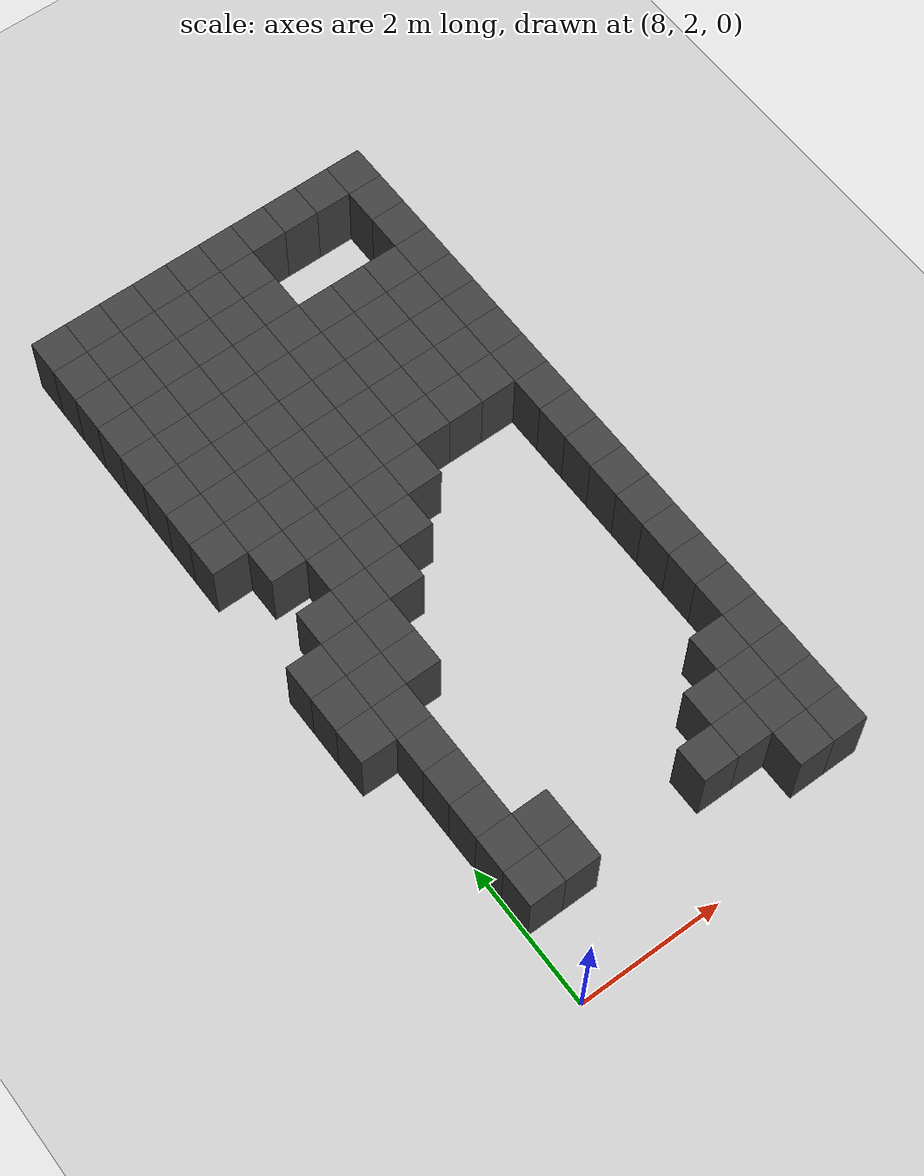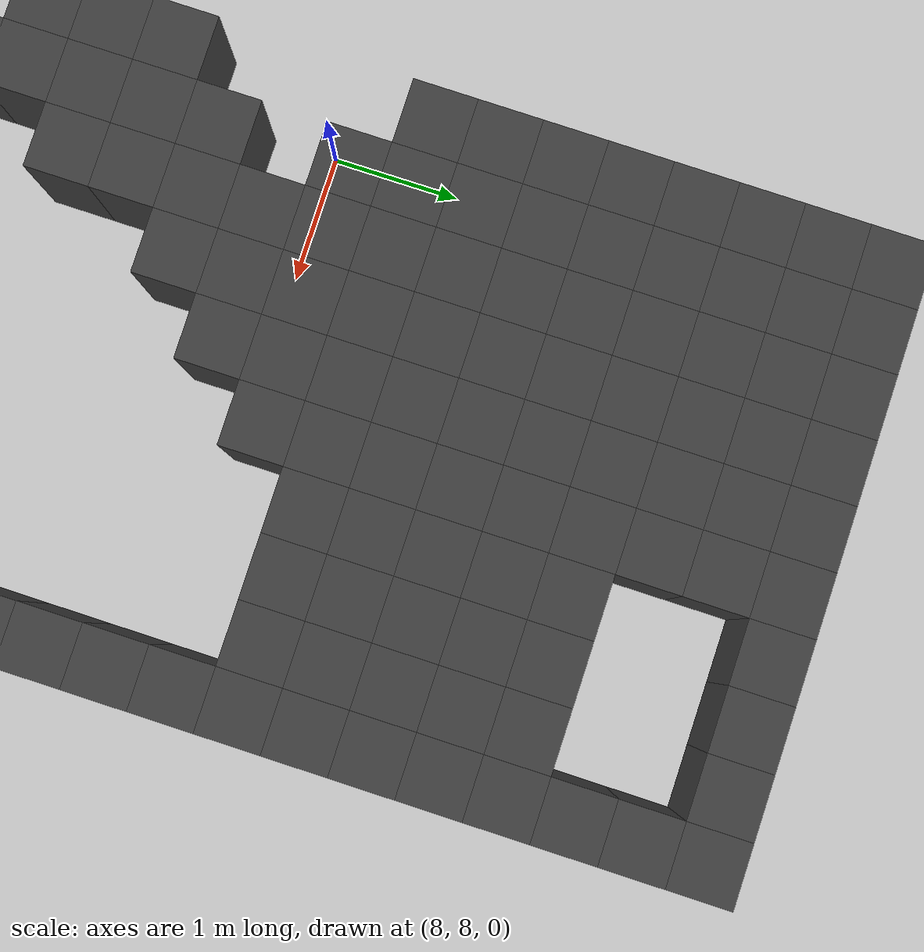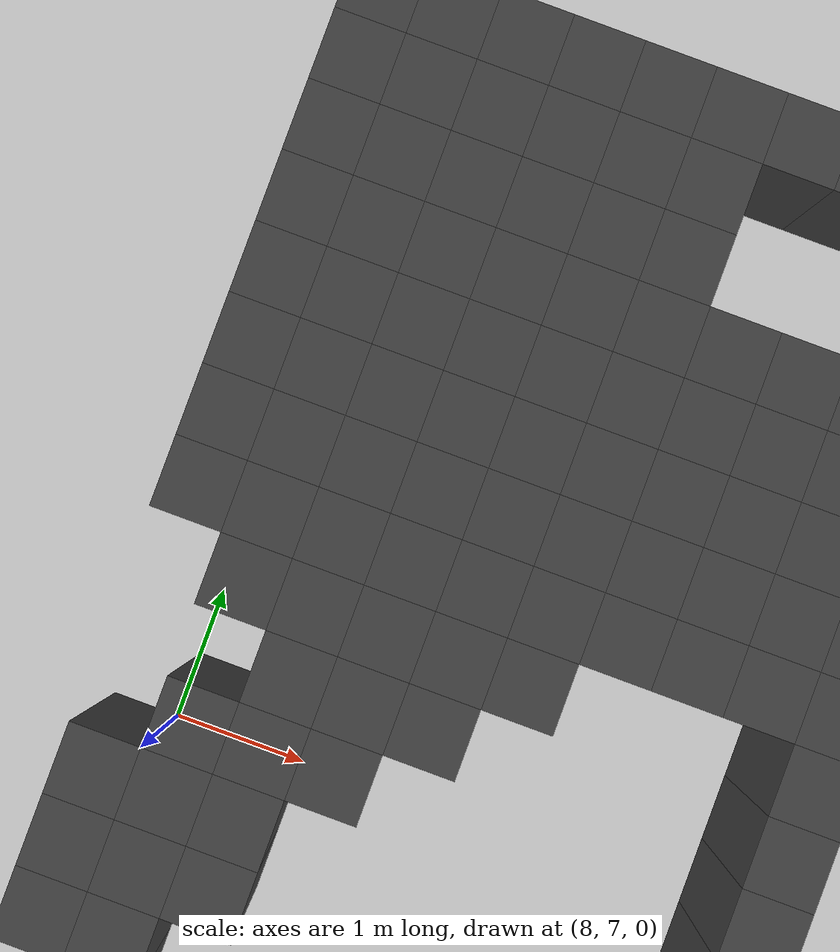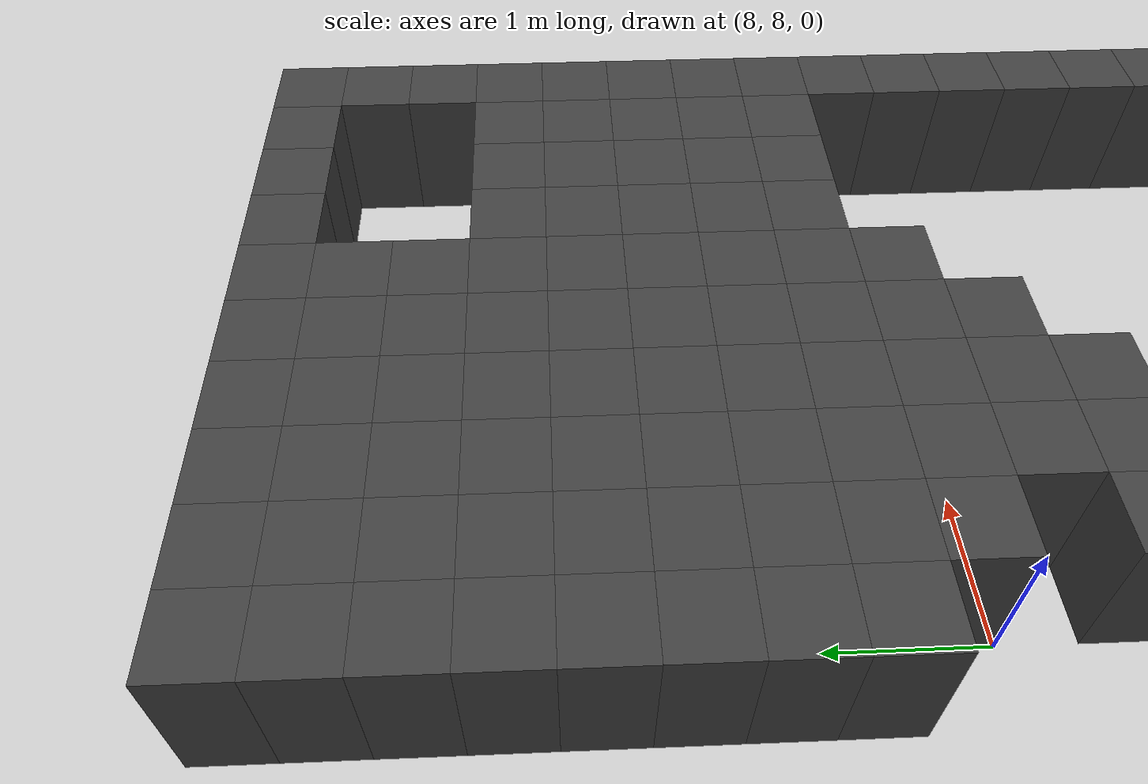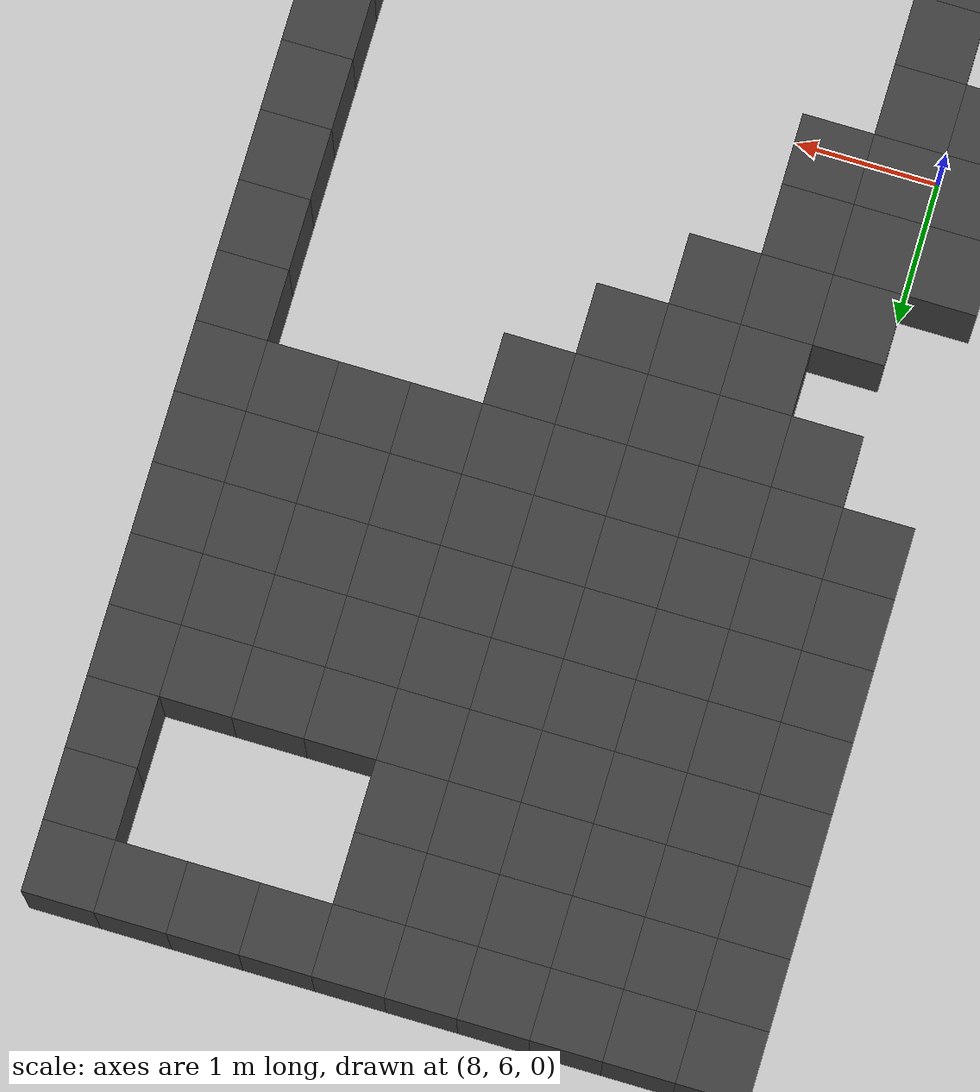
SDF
<sdf version="1.7">
 <world name="map_9826">
  <model name="ground_plane">
   <static>true</static>
   <link name="link">
    <collision name="collision">
     <geometry><plane><normal>0 0 1</normal><size>200 200</size></plane></geometry>
    </collision>
    <visual name="visual">
     <geometry><plane><normal>0 0 1</normal><size>200 200</size></plane></geometry>
     <material><ambient>0.8 0.8 0.8 1</ambient><diffuse>0.8 0.8 0.8 1</diffuse></material>
    </visual>
   </link>
  </model>
  <model name="maze_environment">
   <static>true</static>
   <link name="wall_40">
    <pose>7.750 12.250 0.500 0 0 0</pose>
    <collision name="col"><geometry><box><size>0.5 0.5 1.0</size></box></geometry></collision>
    <visual name="vis">
     <geometry><box><size>0.5 0.5 1.0</size></box></geometry>
     <material><ambient>0.15 0.15 0.15 1</ambient><diffuse>0.25 0.25 0.25 1</diffuse></material>
    </visual>
   </link>
   <link name="wall_41">
    <pose>8.250 12.250 0.500 0 0 0</pose>
    <collision name="col"><geometry><box><size>0.5 0.5 1.0</size></box></geometry></collision>
    <visual name="vis">
     <geometry><box><size>0.5 0.5 1.0</size></box></geometry>
     <material><ambient>0.15 0.15 0.15 1</ambient><diffuse>0.25 0.25 0.25 1</diffuse></material>
    </visual>
   </link>
   <link name="wall_42">
    <pose>8.750 12.250 0.500 0 0 0</pose>
    <collision name="col"><geometry><box><size>0.5 0.5 1.0</size></box></geometry></collision>
    <visual name="vis">
     <geometry><box><size>0.5 0.5 1.0</size></box></geometry>
     <material><ambient>0.15 0.15 0.15 1</ambient><diffuse>0.25 0.25 0.25 1</diffuse></material>
    </visual>
   </link>
   <link name="wall_43">
    <pose>9.250 12.250 0.500 0 0 0</pose>
    <collision name="col"><geometry><box><size>0.5 0.5 1.0</size></box></geometry></collision>
    <visual name="vis">
     <geometry><box><size>0.5 0.5 1.0</size></box></geometry>
     <material><ambient>0.15 0.15 0.15 1</ambient><diffuse>0.25 0.25 0.25 1</diffuse></material>
    </visual>
   </link>
   <link name="wall_44">
    <pose>9.750 12.250 0.500 0 0 0</pose>
    <collision name="col"><geometry><box><size>0.5 0.5 1.0</size></box></geometry></collision>
    <visual name="vis">
     <geometry><box><size>0.5 0.5 1.0</size></box></geometry>
     <material><ambient>0.15 0.15 0.15 1</ambient><diffuse>0.25 0.25 0.25 1</diffuse></material>
    </visual>
   </link>
   <link name="wall_45">
    <pose>10.250 12.250 0.500 0 0 0</pose>
    <collision name="col"><geometry><box><size>0.5 0.5 1.0</size></box></geometry></collision>
    <visual name="vis">
     <geometry><box><size>0.5 0.5 1.0</size></box></geometry>
     <material><ambient>0.15 0.15 0.15 1</ambient><diffuse>0.25 0.25 0.25 1</diffuse></material>
    </visual>
   </link>
   <link name="wall_46">
    <pose>10.750 12.250 0.500 0 0 0</pose>
    <collision name="col"><geometry><box><size>0.5 0.5 1.0</size></box></geometry></collision>
    <visual name="vis">
     <geometry><box><size>0.5 0.5 1.0</size></box></geometry>
     <material><ambient>0.15 0.15 0.15 1</ambient><diffuse>0.25 0.25 0.25 1</diffuse></material>
    </visual>
   </link>
   <link name="wall_47">
    <pose>11.250 12.250 0.500 0 0 0</pose>
    <collision name="col"><geometry><box><size>0.5 0.5 1.0</size></box></geometry></collision>
    <visual name="vis">
     <geometry><box><size>0.5 0.5 1.0</size></box></geometry>
     <material><ambient>0.15 0.15 0.15 1</ambient><diffuse>0.25 0.25 0.25 1</diffuse></material>
    </visual>
   </link>
   <link name="wall_48">
    <pose>11.750 12.250 0.500 0 0 0</pose>
    <collision name="col"><geometry><box><size>0.5 0.5 1.0</size></box></geometry></collision>
    <visual name="vis">
     <geometry><box><size>0.5 0.5 1.0</size></box></geometry>
     <material><ambient>0.15 0.15 0.15 1</ambient><diffuse>0.25 0.25 0.25 1</diffuse></material>
    </visual>
   </link>
   <link name="wall_49">
    <pose>12.250 12.250 0.500 0 0 0</pose>
    <collision name="col"><geometry><box><size>0.5 0.5 1.0</size></box></geometry></collision>
    <visual name="vis">
     <geometry><box><size>0.5 0.5 1.0</size></box></geometry>
     <material><ambient>0.15 0.15 0.15 1</ambient><diffuse>0.25 0.25 0.25 1</diffuse></material>
    </visual>
   </link>
   <link name="wall_84">
    <pose>7.750 11.750 0.500 0 0 0</pose>
    <collision name="col"><geometry><box><size>0.5 0.5 1.0</size></box></geometry></collision>
    <visual name="vis">
     <geometry><box><size>0.5 0.5 1.0</size></box></geometry>
     <material><ambient>0.15 0.15 0.15 1</ambient><diffuse>0.25 0.25 0.25 1</diffuse></material>
    </visual>
   </link>
   <link name="wall_85">
    <pose>8.250 11.750 0.500 0 0 0</pose>
    <collision name="col"><geometry><box><size>0.5 0.5 1.0</size></box></geometry></collision>
    <visual name="vis">
     <geometry><box><size>0.5 0.5 1.0</size></box></geometry>
     <material><ambient>0.15 0.15 0.15 1</ambient><diffuse>0.25 0.25 0.25 1</diffuse></material>
    </visual>
   </link>
   <link name="wall_86">
    <pose>8.750 11.750 0.500 0 0 0</pose>
    <collision name="col"><geometry><box><size>0.5 0.5 1.0</size></box></geometry></collision>
    <visual name="vis">
     <geometry><box><size>0.5 0.5 1.0</size></box></geometry>
     <material><ambient>0.15 0.15 0.15 1</ambient><diffuse>0.25 0.25 0.25 1</diffuse></material>
    </visual>
   </link>
   <link name="wall_87">
    <pose>9.250 11.750 0.500 0 0 0</pose>
    <collision name="col"><geometry><box><size>0.5 0.5 1.0</size></box></geometry></collision>
    <visual name="vis">
     <geometry><box><size>0.5 0.5 1.0</size></box></geometry>
     <material><ambient>0.15 0.15 0.15 1</ambient><diffuse>0.25 0.25 0.25 1</diffuse></material>
    </visual>
   </link>
   <link name="wall_88">
    <pose>9.750 11.750 0.500 0 0 0</pose>
    <collision name="col"><geometry><box><size>0.5 0.5 1.0</size></box></geometry></collision>
    <visual name="vis">
     <geometry><box><size>0.5 0.5 1.0</size></box></geometry>
     <material><ambient>0.15 0.15 0.15 1</ambient><diffuse>0.25 0.25 0.25 1</diffuse></material>
    </visual>
   </link>
   <link name="wall_89">
    <pose>10.250 11.750 0.500 0 0 0</pose>
    <collision name="col"><geometry><box><size>0.5 0.5 1.0</size></box></geometry></collision>
    <visual name="vis">
     <geometry><box><size>0.5 0.5 1.0</size></box></geometry>
     <material><ambient>0.15 0.15 0.15 1</ambient><diffuse>0.25 0.25 0.25 1</diffuse></material>
    </visual>
   </link>
   <link name="wall_90">
    <pose>12.250 11.750 0.500 0 0 0</pose>
    <collision name="col"><geometry><box><size>0.5 0.5 1.0</size></box></geometry></collision>
    <visual name="vis">
     <geometry><box><size>0.5 0.5 1.0</size></box></geometry>
     <material><ambient>0.15 0.15 0.15 1</ambient><diffuse>0.25 0.25 0.25 1</diffuse></material>
    </visual>
   </link>
   <link name="wall_114">
    <pose>7.750 11.250 0.500 0 0 0</pose>
    <collision name="col"><geometry><box><size>0.5 0.5 1.0</size></box></geometry></collision>
    <visual name="vis">
     <geometry><box><size>0.5 0.5 1.0</size></box></geometry>
     <material><ambient>0.15 0.15 0.15 1</ambient><diffuse>0.25 0.25 0.25 1</diffuse></material>
    </visual>
   </link>
   <link name="wall_115">
    <pose>8.250 11.250 0.500 0 0 0</pose>
    <collision name="col"><geometry><box><size>0.5 0.5 1.0</size></box></geometry></collision>
    <visual name="vis">
     <geometry><box><size>0.5 0.5 1.0</size></box></geometry>
     <material><ambient>0.15 0.15 0.15 1</ambient><diffuse>0.25 0.25 0.25 1</diffuse></material>
    </visual>
   </link>
   <link name="wall_116">
    <pose>8.750 11.250 0.500 0 0 0</pose>
    <collision name="col"><geometry><box><size>0.5 0.5 1.0</size></box></geometry></collision>
    <visual name="vis">
     <geometry><box><size>0.5 0.5 1.0</size></box></geometry>
     <material><ambient>0.15 0.15 0.15 1</ambient><diffuse>0.25 0.25 0.25 1</diffuse></material>
    </visual>
   </link>
   <link name="wall_117">
    <pose>9.250 11.250 0.500 0 0 0</pose>
    <collision name="col"><geometry><box><size>0.5 0.5 1.0</size></box></geometry></collision>
    <visual name="vis">
     <geometry><box><size>0.5 0.5 1.0</size></box></geometry>
     <material><ambient>0.15 0.15 0.15 1</ambient><diffuse>0.25 0.25 0.25 1</diffuse></material>
    </visual>
   </link>
   <link name="wall_118">
    <pose>9.750 11.250 0.500 0 0 0</pose>
    <collision name="col"><geometry><box><size>0.5 0.5 1.0</size></box></geometry></collision>
    <visual name="vis">
     <geometry><box><size>0.5 0.5 1.0</size></box></geometry>
     <material><ambient>0.15 0.15 0.15 1</ambient><diffuse>0.25 0.25 0.25 1</diffuse></material>
    </visual>
   </link>
   <link name="wall_119">
    <pose>10.250 11.250 0.500 0 0 0</pose>
    <collision name="col"><geometry><box><size>0.5 0.5 1.0</size></box></geometry></collision>
    <visual name="vis">
     <geometry><box><size>0.5 0.5 1.0</size></box></geometry>
     <material><ambient>0.15 0.15 0.15 1</ambient><diffuse>0.25 0.25 0.25 1</diffuse></material>
    </visual>
   </link>
   <link name="wall_120">
    <pose>12.250 11.250 0.500 0 0 0</pose>
    <collision name="col"><geometry><box><size>0.5 0.5 1.0</size></box></geometry></collision>
    <visual name="vis">
     <geometry><box><size>0.5 0.5 1.0</size></box></geometry>
     <material><ambient>0.15 0.15 0.15 1</ambient><diffuse>0.25 0.25 0.25 1</diffuse></material>
    </visual>
   </link>
   <link name="wall_136">
    <pose>7.750 10.750 0.500 0 0 0</pose>
    <collision name="col"><geometry><box><size>0.5 0.5 1.0</size></box></geometry></collision>
    <visual name="vis">
     <geometry><box><size>0.5 0.5 1.0</size></box></geometry>
     <material><ambient>0.15 0.15 0.15 1</ambient><diffuse>0.25 0.25 0.25 1</diffuse></material>
    </visual>
   </link>
   <link name="wall_137">
    <pose>8.250 10.750 0.500 0 0 0</pose>
    <collision name="col"><geometry><box><size>0.5 0.5 1.0</size></box></geometry></collision>
    <visual name="vis">
     <geometry><box><size>0.5 0.5 1.0</size></box></geometry>
     <material><ambient>0.15 0.15 0.15 1</ambient><diffuse>0.25 0.25 0.25 1</diffuse></material>
    </visual>
   </link>
   <link name="wall_138">
    <pose>8.750 10.750 0.500 0 0 0</pose>
    <collision name="col"><geometry><box><size>0.5 0.5 1.0</size></box></geometry></collision>
    <visual name="vis">
     <geometry><box><size>0.5 0.5 1.0</size></box></geometry>
     <material><ambient>0.15 0.15 0.15 1</ambient><diffuse>0.25 0.25 0.25 1</diffuse></material>
    </visual>
   </link>
   <link name="wall_139">
    <pose>9.250 10.750 0.500 0 0 0</pose>
    <collision name="col"><geometry><box><size>0.5 0.5 1.0</size></box></geometry></collision>
    <visual name="vis">
     <geometry><box><size>0.5 0.5 1.0</size></box></geometry>
     <material><ambient>0.15 0.15 0.15 1</ambient><diffuse>0.25 0.25 0.25 1</diffuse></material>
    </visual>
   </link>
   <link name="wall_140">
    <pose>9.750 10.750 0.500 0 0 0</pose>
    <collision name="col"><geometry><box><size>0.5 0.5 1.0</size></box></geometry></collision>
    <visual name="vis">
     <geometry><box><size>0.5 0.5 1.0</size></box></geometry>
     <material><ambient>0.15 0.15 0.15 1</ambient><diffuse>0.25 0.25 0.25 1</diffuse></material>
    </visual>
   </link>
   <link name="wall_141">
    <pose>10.250 10.750 0.500 0 0 0</pose>
    <collision name="col"><geometry><box><size>0.5 0.5 1.0</size></box></geometry></collision>
    <visual name="vis">
     <geometry><box><size>0.5 0.5 1.0</size></box></geometry>
     <material><ambient>0.15 0.15 0.15 1</ambient><diffuse>0.25 0.25 0.25 1</diffuse></material>
    </visual>
   </link>
   <link name="wall_142">
    <pose>10.750 10.750 0.500 0 0 0</pose>
    <collision name="col"><geometry><box><size>0.5 0.5 1.0</size></box></geometry></collision>
    <visual name="vis">
     <geometry><box><size>0.5 0.5 1.0</size></box></geometry>
     <material><ambient>0.15 0.15 0.15 1</ambient><diffuse>0.25 0.25 0.25 1</diffuse></material>
    </visual>
   </link>
   <link name="wall_143">
    <pose>11.250 10.750 0.500 0 0 0</pose>
    <collision name="col"><geometry><box><size>0.5 0.5 1.0</size></box></geometry></collision>
    <visual name="vis">
     <geometry><box><size>0.5 0.5 1.0</size></box></geometry>
     <material><ambient>0.15 0.15 0.15 1</ambient><diffuse>0.25 0.25 0.25 1</diffuse></material>
    </visual>
   </link>
   <link name="wall_144">
    <pose>11.750 10.750 0.500 0 0 0</pose>
    <collision name="col"><geometry><box><size>0.5 0.5 1.0</size></box></geometry></collision>
    <visual name="vis">
     <geometry><box><size>0.5 0.5 1.0</size></box></geometry>
     <material><ambient>0.15 0.15 0.15 1</ambient><diffuse>0.25 0.25 0.25 1</diffuse></material>
    </visual>
   </link>
   <link name="wall_145">
    <pose>12.250 10.750 0.500 0 0 0</pose>
    <collision name="col"><geometry><box><size>0.5 0.5 1.0</size></box></geometry></collision>
    <visual name="vis">
     <geometry><box><size>0.5 0.5 1.0</size></box></geometry>
     <material><ambient>0.15 0.15 0.15 1</ambient><diffuse>0.25 0.25 0.25 1</diffuse></material>
    </visual>
   </link>
   <link name="wall_163">
    <pose>7.750 10.250 0.500 0 0 0</pose>
    <collision name="col"><geometry><box><size>0.5 0.5 1.0</size></box></geometry></collision>
    <visual name="vis">
     <geometry><box><size>0.5 0.5 1.0</size></box></geometry>
     <material><ambient>0.15 0.15 0.15 1</ambient><diffuse>0.25 0.25 0.25 1</diffuse></material>
    </visual>
   </link>
   <link name="wall_164">
    <pose>8.250 10.250 0.500 0 0 0</pose>
    <collision name="col"><geometry><box><size>0.5 0.5 1.0</size></box></geometry></collision>
    <visual name="vis">
     <geometry><box><size>0.5 0.5 1.0</size></box></geometry>
     <material><ambient>0.15 0.15 0.15 1</ambient><diffuse>0.25 0.25 0.25 1</diffuse></material>
    </visual>
   </link>
   <link name="wall_165">
    <pose>8.750 10.250 0.500 0 0 0</pose>
    <collision name="col"><geometry><box><size>0.5 0.5 1.0</size></box></geometry></collision>
    <visual name="vis">
     <geometry><box><size>0.5 0.5 1.0</size></box></geometry>
     <material><ambient>0.15 0.15 0.15 1</ambient><diffuse>0.25 0.25 0.25 1</diffuse></material>
    </visual>
   </link>
   <link name="wall_166">
    <pose>9.250 10.250 0.500 0 0 0</pose>
    <collision name="col"><geometry><box><size>0.5 0.5 1.0</size></box></geometry></collision>
    <visual name="vis">
     <geometry><box><size>0.5 0.5 1.0</size></box></geometry>
     <material><ambient>0.15 0.15 0.15 1</ambient><diffuse>0.25 0.25 0.25 1</diffuse></material>
    </visual>
   </link>
   <link name="wall_167">
    <pose>9.750 10.250 0.500 0 0 0</pose>
    <collision name="col"><geometry><box><size>0.5 0.5 1.0</size></box></geometry></collision>
    <visual name="vis">
     <geometry><box><size>0.5 0.5 1.0</size></box></geometry>
     <material><ambient>0.15 0.15 0.15 1</ambient><diffuse>0.25 0.25 0.25 1</diffuse></material>
    </visual>
   </link>
   <link name="wall_168">
    <pose>10.250 10.250 0.500 0 0 0</pose>
    <collision name="col"><geometry><box><size>0.5 0.5 1.0</size></box></geometry></collision>
    <visual name="vis">
     <geometry><box><size>0.5 0.5 1.0</size></box></geometry>
     <material><ambient>0.15 0.15 0.15 1</ambient><diffuse>0.25 0.25 0.25 1</diffuse></material>
    </visual>
   </link>
   <link name="wall_169">
    <pose>10.750 10.250 0.500 0 0 0</pose>
    <collision name="col"><geometry><box><size>0.5 0.5 1.0</size></box></geometry></collision>
    <visual name="vis">
     <geometry><box><size>0.5 0.5 1.0</size></box></geometry>
     <material><ambient>0.15 0.15 0.15 1</ambient><diffuse>0.25 0.25 0.25 1</diffuse></material>
    </visual>
   </link>
   <link name="wall_170">
    <pose>11.250 10.250 0.500 0 0 0</pose>
    <collision name="col"><geometry><box><size>0.5 0.5 1.0</size></box></geometry></collision>
    <visual name="vis">
     <geometry><box><size>0.5 0.5 1.0</size></box></geometry>
     <material><ambient>0.15 0.15 0.15 1</ambient><diffuse>0.25 0.25 0.25 1</diffuse></material>
    </visual>
   </link>
   <link name="wall_171">
    <pose>11.750 10.250 0.500 0 0 0</pose>
    <collision name="col"><geometry><box><size>0.5 0.5 1.0</size></box></geometry></collision>
    <visual name="vis">
     <geometry><box><size>0.5 0.5 1.0</size></box></geometry>
     <material><ambient>0.15 0.15 0.15 1</ambient><diffuse>0.25 0.25 0.25 1</diffuse></material>
    </visual>
   </link>
   <link name="wall_172">
    <pose>12.250 10.250 0.500 0 0 0</pose>
    <collision name="col"><geometry><box><size>0.5 0.5 1.0</size></box></geometry></collision>
    <visual name="vis">
     <geometry><box><size>0.5 0.5 1.0</size></box></geometry>
     <material><ambient>0.15 0.15 0.15 1</ambient><diffuse>0.25 0.25 0.25 1</diffuse></material>
    </visual>
   </link>
   <link name="wall_191">
    <pose>7.750 9.750 0.500 0 0 0</pose>
    <collision name="col"><geometry><box><size>0.5 0.5 1.0</size></box></geometry></collision>
    <visual name="vis">
     <geometry><box><size>0.5 0.5 1.0</size></box></geometry>
     <material><ambient>0.15 0.15 0.15 1</ambient><diffuse>0.25 0.25 0.25 1</diffuse></material>
    </visual>
   </link>
   <link name="wall_192">
    <pose>8.250 9.750 0.500 0 0 0</pose>
    <collision name="col"><geometry><box><size>0.5 0.5 1.0</size></box></geometry></collision>
    <visual name="vis">
     <geometry><box><size>0.5 0.5 1.0</size></box></geometry>
     <material><ambient>0.15 0.15 0.15 1</ambient><diffuse>0.25 0.25 0.25 1</diffuse></material>
    </visual>
   </link>
   <link name="wall_193">
    <pose>8.750 9.750 0.500 0 0 0</pose>
    <collision name="col"><geometry><box><size>0.5 0.5 1.0</size></box></geometry></collision>
    <visual name="vis">
     <geometry><box><size>0.5 0.5 1.0</size></box></geometry>
     <material><ambient>0.15 0.15 0.15 1</ambient><diffuse>0.25 0.25 0.25 1</diffuse></material>
    </visual>
   </link>
   <link name="wall_194">
    <pose>9.250 9.750 0.500 0 0 0</pose>
    <collision name="col"><geometry><box><size>0.5 0.5 1.0</size></box></geometry></collision>
    <visual name="vis">
     <geometry><box><size>0.5 0.5 1.0</size></box></geometry>
     <material><ambient>0.15 0.15 0.15 1</ambient><diffuse>0.25 0.25 0.25 1</diffuse></material>
    </visual>
   </link>
   <link name="wall_195">
    <pose>9.750 9.750 0.500 0 0 0</pose>
    <collision name="col"><geometry><box><size>0.5 0.5 1.0</size></box></geometry></collision>
    <visual name="vis">
     <geometry><box><size>0.5 0.5 1.0</size></box></geometry>
     <material><ambient>0.15 0.15 0.15 1</ambient><diffuse>0.25 0.25 0.25 1</diffuse></material>
    </visual>
   </link>
   <link name="wall_196">
    <pose>10.250 9.750 0.500 0 0 0</pose>
    <collision name="col"><geometry><box><size>0.5 0.5 1.0</size></box></geometry></collision>
    <visual name="vis">
     <geometry><box><size>0.5 0.5 1.0</size></box></geometry>
     <material><ambient>0.15 0.15 0.15 1</ambient><diffuse>0.25 0.25 0.25 1</diffuse></material>
    </visual>
   </link>
   <link name="wall_197">
    <pose>10.750 9.750 0.500 0 0 0</pose>
    <collision name="col"><geometry><box><size>0.5 0.5 1.0</size></box></geometry></collision>
    <visual name="vis">
     <geometry><box><size>0.5 0.5 1.0</size></box></geometry>
     <material><ambient>0.15 0.15 0.15 1</ambient><diffuse>0.25 0.25 0.25 1</diffuse></material>
    </visual>
   </link>
   <link name="wall_198">
    <pose>11.250 9.750 0.500 0 0 0</pose>
    <collision name="col"><geometry><box><size>0.5 0.5 1.0</size></box></geometry></collision>
    <visual name="vis">
     <geometry><box><size>0.5 0.5 1.0</size></box></geometry>
     <material><ambient>0.15 0.15 0.15 1</ambient><diffuse>0.25 0.25 0.25 1</diffuse></material>
    </visual>
   </link>
   <link name="wall_199">
    <pose>11.750 9.750 0.500 0 0 0</pose>
    <collision name="col"><geometry><box><size>0.5 0.5 1.0</size></box></geometry></collision>
    <visual name="vis">
     <geometry><box><size>0.5 0.5 1.0</size></box></geometry>
     <material><ambient>0.15 0.15 0.15 1</ambient><diffuse>0.25 0.25 0.25 1</diffuse></material>
    </visual>
   </link>
   <link name="wall_200">
    <pose>12.250 9.750 0.500 0 0 0</pose>
    <collision name="col"><geometry><box><size>0.5 0.5 1.0</size></box></geometry></collision>
    <visual name="vis">
     <geometry><box><size>0.5 0.5 1.0</size></box></geometry>
     <material><ambient>0.15 0.15 0.15 1</ambient><diffuse>0.25 0.25 0.25 1</diffuse></material>
    </visual>
   </link>
   <link name="wall_217">
    <pose>7.750 9.250 0.500 0 0 0</pose>
    <collision name="col"><geometry><box><size>0.5 0.5 1.0</size></box></geometry></collision>
    <visual name="vis">
     <geometry><box><size>0.5 0.5 1.0</size></box></geometry>
     <material><ambient>0.15 0.15 0.15 1</ambient><diffuse>0.25 0.25 0.25 1</diffuse></material>
    </visual>
   </link>
   <link name="wall_218">
    <pose>8.250 9.250 0.500 0 0 0</pose>
    <collision name="col"><geometry><box><size>0.5 0.5 1.0</size></box></geometry></collision>
    <visual name="vis">
     <geometry><box><size>0.5 0.5 1.0</size></box></geometry>
     <material><ambient>0.15 0.15 0.15 1</ambient><diffuse>0.25 0.25 0.25 1</diffuse></material>
    </visual>
   </link>
   <link name="wall_219">
    <pose>8.750 9.250 0.500 0 0 0</pose>
    <collision name="col"><geometry><box><size>0.5 0.5 1.0</size></box></geometry></collision>
    <visual name="vis">
     <geometry><box><size>0.5 0.5 1.0</size></box></geometry>
     <material><ambient>0.15 0.15 0.15 1</ambient><diffuse>0.25 0.25 0.25 1</diffuse></material>
    </visual>
   </link>
   <link name="wall_220">
    <pose>9.250 9.250 0.500 0 0 0</pose>
    <collision name="col"><geometry><box><size>0.5 0.5 1.0</size></box></geometry></collision>
    <visual name="vis">
     <geometry><box><size>0.5 0.5 1.0</size></box></geometry>
     <material><ambient>0.15 0.15 0.15 1</ambient><diffuse>0.25 0.25 0.25 1</diffuse></material>
    </visual>
   </link>
   <link name="wall_221">
    <pose>9.750 9.250 0.500 0 0 0</pose>
    <collision name="col"><geometry><box><size>0.5 0.5 1.0</size></box></geometry></collision>
    <visual name="vis">
     <geometry><box><size>0.5 0.5 1.0</size></box></geometry>
     <material><ambient>0.15 0.15 0.15 1</ambient><diffuse>0.25 0.25 0.25 1</diffuse></material>
    </visual>
   </link>
   <link name="wall_222">
    <pose>10.250 9.250 0.500 0 0 0</pose>
    <collision name="col"><geometry><box><size>0.5 0.5 1.0</size></box></geometry></collision>
    <visual name="vis">
     <geometry><box><size>0.5 0.5 1.0</size></box></geometry>
     <material><ambient>0.15 0.15 0.15 1</ambient><diffuse>0.25 0.25 0.25 1</diffuse></material>
    </visual>
   </link>
   <link name="wall_223">
    <pose>10.750 9.250 0.500 0 0 0</pose>
    <collision name="col"><geometry><box><size>0.5 0.5 1.0</size></box></geometry></collision>
    <visual name="vis">
     <geometry><box><size>0.5 0.5 1.0</size></box></geometry>
     <material><ambient>0.15 0.15 0.15 1</ambient><diffuse>0.25 0.25 0.25 1</diffuse></material>
    </visual>
   </link>
   <link name="wall_224">
    <pose>11.250 9.250 0.500 0 0 0</pose>
    <collision name="col"><geometry><box><size>0.5 0.5 1.0</size></box></geometry></collision>
    <visual name="vis">
     <geometry><box><size>0.5 0.5 1.0</size></box></geometry>
     <material><ambient>0.15 0.15 0.15 1</ambient><diffuse>0.25 0.25 0.25 1</diffuse></material>
    </visual>
   </link>
   <link name="wall_225">
    <pose>11.750 9.250 0.500 0 0 0</pose>
    <collision name="col"><geometry><box><size>0.5 0.5 1.0</size></box></geometry></collision>
    <visual name="vis">
     <geometry><box><size>0.5 0.5 1.0</size></box></geometry>
     <material><ambient>0.15 0.15 0.15 1</ambient><diffuse>0.25 0.25 0.25 1</diffuse></material>
    </visual>
   </link>
   <link name="wall_226">
    <pose>12.250 9.250 0.500 0 0 0</pose>
    <collision name="col"><geometry><box><size>0.5 0.5 1.0</size></box></geometry></collision>
    <visual name="vis">
     <geometry><box><size>0.5 0.5 1.0</size></box></geometry>
     <material><ambient>0.15 0.15 0.15 1</ambient><diffuse>0.25 0.25 0.25 1</diffuse></material>
    </visual>
   </link>
   <link name="wall_241">
    <pose>7.750 8.750 0.500 0 0 0</pose>
    <collision name="col"><geometry><box><size>0.5 0.5 1.0</size></box></geometry></collision>
    <visual name="vis">
     <geometry><box><size>0.5 0.5 1.0</size></box></geometry>
     <material><ambient>0.15 0.15 0.15 1</ambient><diffuse>0.25 0.25 0.25 1</diffuse></material>
    </visual>
   </link>
   <link name="wall_242">
    <pose>8.250 8.750 0.500 0 0 0</pose>
    <collision name="col"><geometry><box><size>0.5 0.5 1.0</size></box></geometry></collision>
    <visual name="vis">
     <geometry><box><size>0.5 0.5 1.0</size></box></geometry>
     <material><ambient>0.15 0.15 0.15 1</ambient><diffuse>0.25 0.25 0.25 1</diffuse></material>
    </visual>
   </link>
   <link name="wall_243">
    <pose>8.750 8.750 0.500 0 0 0</pose>
    <collision name="col"><geometry><box><size>0.5 0.5 1.0</size></box></geometry></collision>
    <visual name="vis">
     <geometry><box><size>0.5 0.5 1.0</size></box></geometry>
     <material><ambient>0.15 0.15 0.15 1</ambient><diffuse>0.25 0.25 0.25 1</diffuse></material>
    </visual>
   </link>
   <link name="wall_244">
    <pose>9.250 8.750 0.500 0 0 0</pose>
    <collision name="col"><geometry><box><size>0.5 0.5 1.0</size></box></geometry></collision>
    <visual name="vis">
     <geometry><box><size>0.5 0.5 1.0</size></box></geometry>
     <material><ambient>0.15 0.15 0.15 1</ambient><diffuse>0.25 0.25 0.25 1</diffuse></material>
    </visual>
   </link>
   <link name="wall_245">
    <pose>9.750 8.750 0.500 0 0 0</pose>
    <collision name="col"><geometry><box><size>0.5 0.5 1.0</size></box></geometry></collision>
    <visual name="vis">
     <geometry><box><size>0.5 0.5 1.0</size></box></geometry>
     <material><ambient>0.15 0.15 0.15 1</ambient><diffuse>0.25 0.25 0.25 1</diffuse></material>
    </visual>
   </link>
   <link name="wall_246">
    <pose>10.250 8.750 0.500 0 0 0</pose>
    <collision name="col"><geometry><box><size>0.5 0.5 1.0</size></box></geometry></collision>
    <visual name="vis">
     <geometry><box><size>0.5 0.5 1.0</size></box></geometry>
     <material><ambient>0.15 0.15 0.15 1</ambient><diffuse>0.25 0.25 0.25 1</diffuse></material>
    </visual>
   </link>
   <link name="wall_247">
    <pose>10.750 8.750 0.500 0 0 0</pose>
    <collision name="col"><geometry><box><size>0.5 0.5 1.0</size></box></geometry></collision>
    <visual name="vis">
     <geometry><box><size>0.5 0.5 1.0</size></box></geometry>
     <material><ambient>0.15 0.15 0.15 1</ambient><diffuse>0.25 0.25 0.25 1</diffuse></material>
    </visual>
   </link>
   <link name="wall_248">
    <pose>11.250 8.750 0.500 0 0 0</pose>
    <collision name="col"><geometry><box><size>0.5 0.5 1.0</size></box></geometry></collision>
    <visual name="vis">
     <geometry><box><size>0.5 0.5 1.0</size></box></geometry>
     <material><ambient>0.15 0.15 0.15 1</ambient><diffuse>0.25 0.25 0.25 1</diffuse></material>
    </visual>
   </link>
   <link name="wall_249">
    <pose>11.750 8.750 0.500 0 0 0</pose>
    <collision name="col"><geometry><box><size>0.5 0.5 1.0</size></box></geometry></collision>
    <visual name="vis">
     <geometry><box><size>0.5 0.5 1.0</size></box></geometry>
     <material><ambient>0.15 0.15 0.15 1</ambient><diffuse>0.25 0.25 0.25 1</diffuse></material>
    </visual>
   </link>
   <link name="wall_250">
    <pose>12.250 8.750 0.500 0 0 0</pose>
    <collision name="col"><geometry><box><size>0.5 0.5 1.0</size></box></geometry></collision>
    <visual name="vis">
     <geometry><box><size>0.5 0.5 1.0</size></box></geometry>
     <material><ambient>0.15 0.15 0.15 1</ambient><diffuse>0.25 0.25 0.25 1</diffuse></material>
    </visual>
   </link>
   <link name="wall_257">
    <pose>8.250 8.250 0.500 0 0 0</pose>
    <collision name="col"><geometry><box><size>0.5 0.5 1.0</size></box></geometry></collision>
    <visual name="vis">
     <geometry><box><size>0.5 0.5 1.0</size></box></geometry>
     <material><ambient>0.15 0.15 0.15 1</ambient><diffuse>0.25 0.25 0.25 1</diffuse></material>
    </visual>
   </link>
   <link name="wall_258">
    <pose>8.750 8.250 0.500 0 0 0</pose>
    <collision name="col"><geometry><box><size>0.5 0.5 1.0</size></box></geometry></collision>
    <visual name="vis">
     <geometry><box><size>0.5 0.5 1.0</size></box></geometry>
     <material><ambient>0.15 0.15 0.15 1</ambient><diffuse>0.25 0.25 0.25 1</diffuse></material>
    </visual>
   </link>
   <link name="wall_259">
    <pose>9.250 8.250 0.500 0 0 0</pose>
    <collision name="col"><geometry><box><size>0.5 0.5 1.0</size></box></geometry></collision>
    <visual name="vis">
     <geometry><box><size>0.5 0.5 1.0</size></box></geometry>
     <material><ambient>0.15 0.15 0.15 1</ambient><diffuse>0.25 0.25 0.25 1</diffuse></material>
    </visual>
   </link>
   <link name="wall_260">
    <pose>9.750 8.250 0.500 0 0 0</pose>
    <collision name="col"><geometry><box><size>0.5 0.5 1.0</size></box></geometry></collision>
    <visual name="vis">
     <geometry><box><size>0.5 0.5 1.0</size></box></geometry>
     <material><ambient>0.15 0.15 0.15 1</ambient><diffuse>0.25 0.25 0.25 1</diffuse></material>
    </visual>
   </link>
   <link name="wall_261">
    <pose>10.250 8.250 0.500 0 0 0</pose>
    <collision name="col"><geometry><box><size>0.5 0.5 1.0</size></box></geometry></collision>
    <visual name="vis">
     <geometry><box><size>0.5 0.5 1.0</size></box></geometry>
     <material><ambient>0.15 0.15 0.15 1</ambient><diffuse>0.25 0.25 0.25 1</diffuse></material>
    </visual>
   </link>
   <link name="wall_262">
    <pose>12.250 8.250 0.500 0 0 0</pose>
    <collision name="col"><geometry><box><size>0.5 0.5 1.0</size></box></geometry></collision>
    <visual name="vis">
     <geometry><box><size>0.5 0.5 1.0</size></box></geometry>
     <material><ambient>0.15 0.15 0.15 1</ambient><diffuse>0.25 0.25 0.25 1</diffuse></material>
    </visual>
   </link>
   <link name="wall_266">
    <pose>8.750 7.750 0.500 0 0 0</pose>
    <collision name="col"><geometry><box><size>0.5 0.5 1.0</size></box></geometry></collision>
    <visual name="vis">
     <geometry><box><size>0.5 0.5 1.0</size></box></geometry>
     <material><ambient>0.15 0.15 0.15 1</ambient><diffuse>0.25 0.25 0.25 1</diffuse></material>
    </visual>
   </link>
   <link name="wall_267">
    <pose>9.250 7.750 0.500 0 0 0</pose>
    <collision name="col"><geometry><box><size>0.5 0.5 1.0</size></box></geometry></collision>
    <visual name="vis">
     <geometry><box><size>0.5 0.5 1.0</size></box></geometry>
     <material><ambient>0.15 0.15 0.15 1</ambient><diffuse>0.25 0.25 0.25 1</diffuse></material>
    </visual>
   </link>
   <link name="wall_268">
    <pose>9.750 7.750 0.500 0 0 0</pose>
    <collision name="col"><geometry><box><size>0.5 0.5 1.0</size></box></geometry></collision>
    <visual name="vis">
     <geometry><box><size>0.5 0.5 1.0</size></box></geometry>
     <material><ambient>0.15 0.15 0.15 1</ambient><diffuse>0.25 0.25 0.25 1</diffuse></material>
    </visual>
   </link>
   <link name="wall_269">
    <pose>12.250 7.750 0.500 0 0 0</pose>
    <collision name="col"><geometry><box><size>0.5 0.5 1.0</size></box></geometry></collision>
    <visual name="vis">
     <geometry><box><size>0.5 0.5 1.0</size></box></geometry>
     <material><ambient>0.15 0.15 0.15 1</ambient><diffuse>0.25 0.25 0.25 1</diffuse></material>
    </visual>
   </link>
   <link name="wall_274">
    <pose>8.250 7.250 0.500 0 0 0</pose>
    <collision name="col"><geometry><box><size>0.5 0.5 1.0</size></box></geometry></collision>
    <visual name="vis">
     <geometry><box><size>0.5 0.5 1.0</size></box></geometry>
     <material><ambient>0.15 0.15 0.15 1</ambient><diffuse>0.25 0.25 0.25 1</diffuse></material>
    </visual>
   </link>
   <link name="wall_275">
    <pose>8.750 7.250 0.500 0 0 0</pose>
    <collision name="col"><geometry><box><size>0.5 0.5 1.0</size></box></geometry></collision>
    <visual name="vis">
     <geometry><box><size>0.5 0.5 1.0</size></box></geometry>
     <material><ambient>0.15 0.15 0.15 1</ambient><diffuse>0.25 0.25 0.25 1</diffuse></material>
    </visual>
   </link>
   <link name="wall_276">
    <pose>9.250 7.250 0.500 0 0 0</pose>
    <collision name="col"><geometry><box><size>0.5 0.5 1.0</size></box></geometry></collision>
    <visual name="vis">
     <geometry><box><size>0.5 0.5 1.0</size></box></geometry>
     <material><ambient>0.15 0.15 0.15 1</ambient><diffuse>0.25 0.25 0.25 1</diffuse></material>
    </visual>
   </link>
   <link name="wall_277">
    <pose>12.250 7.250 0.500 0 0 0</pose>
    <collision name="col"><geometry><box><size>0.5 0.5 1.0</size></box></geometry></collision>
    <visual name="vis">
     <geometry><box><size>0.5 0.5 1.0</size></box></geometry>
     <material><ambient>0.15 0.15 0.15 1</ambient><diffuse>0.25 0.25 0.25 1</diffuse></material>
    </visual>
   </link>
   <link name="wall_286">
    <pose>7.750 6.750 0.500 0 0 0</pose>
    <collision name="col"><geometry><box><size>0.5 0.5 1.0</size></box></geometry></collision>
    <visual name="vis">
     <geometry><box><size>0.5 0.5 1.0</size></box></geometry>
     <material><ambient>0.15 0.15 0.15 1</ambient><diffuse>0.25 0.25 0.25 1</diffuse></material>
    </visual>
   </link>
   <link name="wall_287">
    <pose>8.250 6.750 0.500 0 0 0</pose>
    <collision name="col"><geometry><box><size>0.5 0.5 1.0</size></box></geometry></collision>
    <visual name="vis">
     <geometry><box><size>0.5 0.5 1.0</size></box></geometry>
     <material><ambient>0.15 0.15 0.15 1</ambient><diffuse>0.25 0.25 0.25 1</diffuse></material>
    </visual>
   </link>
   <link name="wall_288">
    <pose>8.750 6.750 0.500 0 0 0</pose>
    <collision name="col"><geometry><box><size>0.5 0.5 1.0</size></box></geometry></collision>
    <visual name="vis">
     <geometry><box><size>0.5 0.5 1.0</size></box></geometry>
     <material><ambient>0.15 0.15 0.15 1</ambient><diffuse>0.25 0.25 0.25 1</diffuse></material>
    </visual>
   </link>
   <link name="wall_289">
    <pose>12.250 6.750 0.500 0 0 0</pose>
    <collision name="col"><geometry><box><size>0.5 0.5 1.0</size></box></geometry></collision>
    <visual name="vis">
     <geometry><box><size>0.5 0.5 1.0</size></box></geometry>
     <material><ambient>0.15 0.15 0.15 1</ambient><diffuse>0.25 0.25 0.25 1</diffuse></material>
    </visual>
   </link>
   <link name="wall_306">
    <pose>7.750 6.250 0.500 0 0 0</pose>
    <collision name="col"><geometry><box><size>0.5 0.5 1.0</size></box></geometry></collision>
    <visual name="vis">
     <geometry><box><size>0.5 0.5 1.0</size></box></geometry>
     <material><ambient>0.15 0.15 0.15 1</ambient><diffuse>0.25 0.25 0.25 1</diffuse></material>
    </visual>
   </link>
   <link name="wall_307">
    <pose>8.250 6.250 0.500 0 0 0</pose>
    <collision name="col"><geometry><box><size>0.5 0.5 1.0</size></box></geometry></collision>
    <visual name="vis">
     <geometry><box><size>0.5 0.5 1.0</size></box></geometry>
     <material><ambient>0.15 0.15 0.15 1</ambient><diffuse>0.25 0.25 0.25 1</diffuse></material>
    </visual>
   </link>
   <link name="wall_308">
    <pose>8.750 6.250 0.500 0 0 0</pose>
    <collision name="col"><geometry><box><size>0.5 0.5 1.0</size></box></geometry></collision>
    <visual name="vis">
     <geometry><box><size>0.5 0.5 1.0</size></box></geometry>
     <material><ambient>0.15 0.15 0.15 1</ambient><diffuse>0.25 0.25 0.25 1</diffuse></material>
    </visual>
   </link>
   <link name="wall_309">
    <pose>12.250 6.250 0.500 0 0 0</pose>
    <collision name="col"><geometry><box><size>0.5 0.5 1.0</size></box></geometry></collision>
    <visual name="vis">
     <geometry><box><size>0.5 0.5 1.0</size></box></geometry>
     <material><ambient>0.15 0.15 0.15 1</ambient><diffuse>0.25 0.25 0.25 1</diffuse></material>
    </visual>
   </link>
   <link name="wall_323">
    <pose>7.750 5.750 0.500 0 0 0</pose>
    <collision name="col"><geometry><box><size>0.5 0.5 1.0</size></box></geometry></collision>
    <visual name="vis">
     <geometry><box><size>0.5 0.5 1.0</size></box></geometry>
     <material><ambient>0.15 0.15 0.15 1</ambient><diffuse>0.25 0.25 0.25 1</diffuse></material>
    </visual>
   </link>
   <link name="wall_324">
    <pose>8.250 5.750 0.500 0 0 0</pose>
    <collision name="col"><geometry><box><size>0.5 0.5 1.0</size></box></geometry></collision>
    <visual name="vis">
     <geometry><box><size>0.5 0.5 1.0</size></box></geometry>
     <material><ambient>0.15 0.15 0.15 1</ambient><diffuse>0.25 0.25 0.25 1</diffuse></material>
    </visual>
   </link>
   <link name="wall_325">
    <pose>12.250 5.750 0.500 0 0 0</pose>
    <collision name="col"><geometry><box><size>0.5 0.5 1.0</size></box></geometry></collision>
    <visual name="vis">
     <geometry><box><size>0.5 0.5 1.0</size></box></geometry>
     <material><ambient>0.15 0.15 0.15 1</ambient><diffuse>0.25 0.25 0.25 1</diffuse></material>
    </visual>
   </link>
   <link name="wall_337">
    <pose>8.250 5.250 0.500 0 0 0</pose>
    <collision name="col"><geometry><box><size>0.5 0.5 1.0</size></box></geometry></collision>
    <visual name="vis">
     <geometry><box><size>0.5 0.5 1.0</size></box></geometry>
     <material><ambient>0.15 0.15 0.15 1</ambient><diffuse>0.25 0.25 0.25 1</diffuse></material>
    </visual>
   </link>
   <link name="wall_338">
    <pose>12.250 5.250 0.500 0 0 0</pose>
    <collision name="col"><geometry><box><size>0.5 0.5 1.0</size></box></geometry></collision>
    <visual name="vis">
     <geometry><box><size>0.5 0.5 1.0</size></box></geometry>
     <material><ambient>0.15 0.15 0.15 1</ambient><diffuse>0.25 0.25 0.25 1</diffuse></material>
    </visual>
   </link>
   <link name="wall_350">
    <pose>8.250 4.750 0.500 0 0 0</pose>
    <collision name="col"><geometry><box><size>0.5 0.5 1.0</size></box></geometry></collision>
    <visual name="vis">
     <geometry><box><size>0.5 0.5 1.0</size></box></geometry>
     <material><ambient>0.15 0.15 0.15 1</ambient><diffuse>0.25 0.25 0.25 1</diffuse></material>
    </visual>
   </link>
   <link name="wall_351">
    <pose>12.250 4.750 0.500 0 0 0</pose>
    <collision name="col"><geometry><box><size>0.5 0.5 1.0</size></box></geometry></collision>
    <visual name="vis">
     <geometry><box><size>0.5 0.5 1.0</size></box></geometry>
     <material><ambient>0.15 0.15 0.15 1</ambient><diffuse>0.25 0.25 0.25 1</diffuse></material>
    </visual>
   </link>
   <link name="wall_365">
    <pose>8.250 4.250 0.500 0 0 0</pose>
    <collision name="col"><geometry><box><size>0.5 0.5 1.0</size></box></geometry></collision>
    <visual name="vis">
     <geometry><box><size>0.5 0.5 1.0</size></box></geometry>
     <material><ambient>0.15 0.15 0.15 1</ambient><diffuse>0.25 0.25 0.25 1</diffuse></material>
    </visual>
   </link>
   <link name="wall_366">
    <pose>11.750 4.250 0.500 0 0 0</pose>
    <collision name="col"><geometry><box><size>0.5 0.5 1.0</size></box></geometry></collision>
    <visual name="vis">
     <geometry><box><size>0.5 0.5 1.0</size></box></geometry>
     <material><ambient>0.15 0.15 0.15 1</ambient><diffuse>0.25 0.25 0.25 1</diffuse></material>
    </visual>
   </link>
   <link name="wall_367">
    <pose>12.250 4.250 0.500 0 0 0</pose>
    <collision name="col"><geometry><box><size>0.5 0.5 1.0</size></box></geometry></collision>
    <visual name="vis">
     <geometry><box><size>0.5 0.5 1.0</size></box></geometry>
     <material><ambient>0.15 0.15 0.15 1</ambient><diffuse>0.25 0.25 0.25 1</diffuse></material>
    </visual>
   </link>
   <link name="wall_380">
    <pose>8.250 3.750 0.500 0 0 0</pose>
    <collision name="col"><geometry><box><size>0.5 0.5 1.0</size></box></geometry></collision>
    <visual name="vis">
     <geometry><box><size>0.5 0.5 1.0</size></box></geometry>
     <material><ambient>0.15 0.15 0.15 1</ambient><diffuse>0.25 0.25 0.25 1</diffuse></material>
    </visual>
   </link>
   <link name="wall_381">
    <pose>8.750 3.750 0.500 0 0 0</pose>
    <collision name="col"><geometry><box><size>0.5 0.5 1.0</size></box></geometry></collision>
    <visual name="vis">
     <geometry><box><size>0.5 0.5 1.0</size></box></geometry>
     <material><ambient>0.15 0.15 0.15 1</ambient><diffuse>0.25 0.25 0.25 1</diffuse></material>
    </visual>
   </link>
   <link name="wall_382">
    <pose>11.250 3.750 0.500 0 0 0</pose>
    <collision name="col"><geometry><box><size>0.5 0.5 1.0</size></box></geometry></collision>
    <visual name="vis">
     <geometry><box><size>0.5 0.5 1.0</size></box></geometry>
     <material><ambient>0.15 0.15 0.15 1</ambient><diffuse>0.25 0.25 0.25 1</diffuse></material>
    </visual>
   </link>
   <link name="wall_383">
    <pose>11.750 3.750 0.500 0 0 0</pose>
    <collision name="col"><geometry><box><size>0.5 0.5 1.0</size></box></geometry></collision>
    <visual name="vis">
     <geometry><box><size>0.5 0.5 1.0</size></box></geometry>
     <material><ambient>0.15 0.15 0.15 1</ambient><diffuse>0.25 0.25 0.25 1</diffuse></material>
    </visual>
   </link>
   <link name="wall_384">
    <pose>12.250 3.750 0.500 0 0 0</pose>
    <collision name="col"><geometry><box><size>0.5 0.5 1.0</size></box></geometry></collision>
    <visual name="vis">
     <geometry><box><size>0.5 0.5 1.0</size></box></geometry>
     <material><ambient>0.15 0.15 0.15 1</ambient><diffuse>0.25 0.25 0.25 1</diffuse></material>
    </visual>
   </link>
   <link name="wall_396">
    <pose>8.250 3.250 0.500 0 0 0</pose>
    <collision name="col"><geometry><box><size>0.5 0.5 1.0</size></box></geometry></collision>
    <visual name="vis">
     <geometry><box><size>0.5 0.5 1.0</size></box></geometry>
     <material><ambient>0.15 0.15 0.15 1</ambient><diffuse>0.25 0.25 0.25 1</diffuse></material>
    </visual>
   </link>
   <link name="wall_397">
    <pose>8.750 3.250 0.500 0 0 0</pose>
    <collision name="col"><geometry><box><size>0.5 0.5 1.0</size></box></geometry></collision>
    <visual name="vis">
     <geometry><box><size>0.5 0.5 1.0</size></box></geometry>
     <material><ambient>0.15 0.15 0.15 1</ambient><diffuse>0.25 0.25 0.25 1</diffuse></material>
    </visual>
   </link>
   <link name="wall_398">
    <pose>10.750 3.250 0.500 0 0 0</pose>
    <collision name="col"><geometry><box><size>0.5 0.5 1.0</size></box></geometry></collision>
    <visual name="vis">
     <geometry><box><size>0.5 0.5 1.0</size></box></geometry>
     <material><ambient>0.15 0.15 0.15 1</ambient><diffuse>0.25 0.25 0.25 1</diffuse></material>
    </visual>
   </link>
   <link name="wall_399">
    <pose>11.250 3.250 0.500 0 0 0</pose>
    <collision name="col"><geometry><box><size>0.5 0.5 1.0</size></box></geometry></collision>
    <visual name="vis">
     <geometry><box><size>0.5 0.5 1.0</size></box></geometry>
     <material><ambient>0.15 0.15 0.15 1</ambient><diffuse>0.25 0.25 0.25 1</diffuse></material>
    </visual>
   </link>
   <link name="wall_400">
    <pose>11.750 3.250 0.500 0 0 0</pose>
    <collision name="col"><geometry><box><size>0.5 0.5 1.0</size></box></geometry></collision>
    <visual name="vis">
     <geometry><box><size>0.5 0.5 1.0</size></box></geometry>
     <material><ambient>0.15 0.15 0.15 1</ambient><diffuse>0.25 0.25 0.25 1</diffuse></material>
    </visual>
   </link>
   <link name="wall_401">
    <pose>12.250 3.250 0.500 0 0 0</pose>
    <collision name="col"><geometry><box><size>0.5 0.5 1.0</size></box></geometry></collision>
    <visual name="vis">
     <geometry><box><size>0.5 0.5 1.0</size></box></geometry>
     <material><ambient>0.15 0.15 0.15 1</ambient><diffuse>0.25 0.25 0.25 1</diffuse></material>
    </visual>
   </link>
   <link name="wall_416">
    <pose>11.750 2.750 0.500 0 0 0</pose>
    <collision name="col"><geometry><box><size>0.5 0.5 1.0</size></box></geometry></collision>
    <visual name="vis">
     <geometry><box><size>0.5 0.5 1.0</size></box></geometry>
     <material><ambient>0.15 0.15 0.15 1</ambient><diffuse>0.25 0.25 0.25 1</diffuse></material>
    </visual>
   </link>
   <link name="wall_417">
    <pose>12.250 2.750 0.500 0 0 0</pose>
    <collision name="col"><geometry><box><size>0.5 0.5 1.0</size></box></geometry></collision>
    <visual name="vis">
     <geometry><box><size>0.5 0.5 1.0</size></box></geometry>
     <material><ambient>0.15 0.15 0.15 1</ambient><diffuse>0.25 0.25 0.25 1</diffuse></material>
    </visual>
   </link>
  </model>
 </world>
</sdf>
